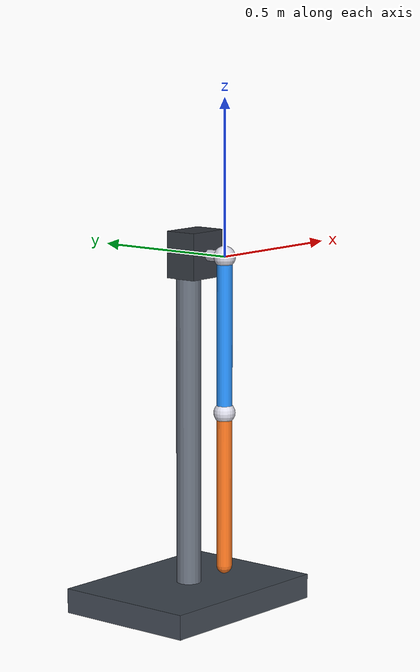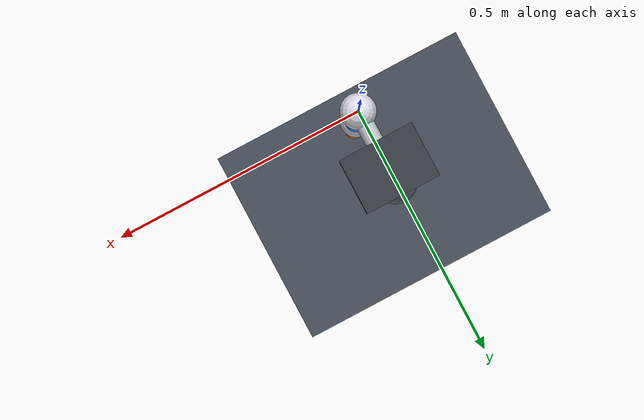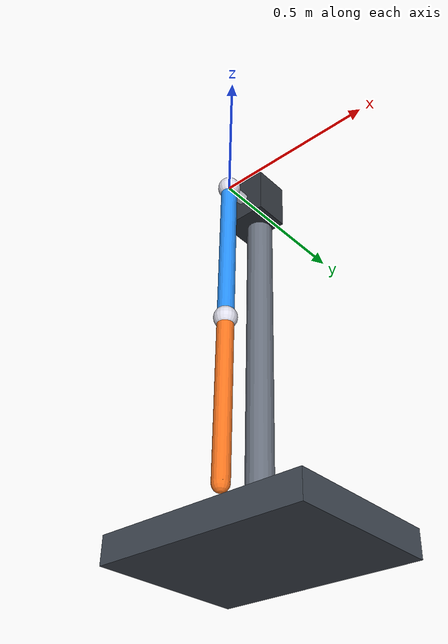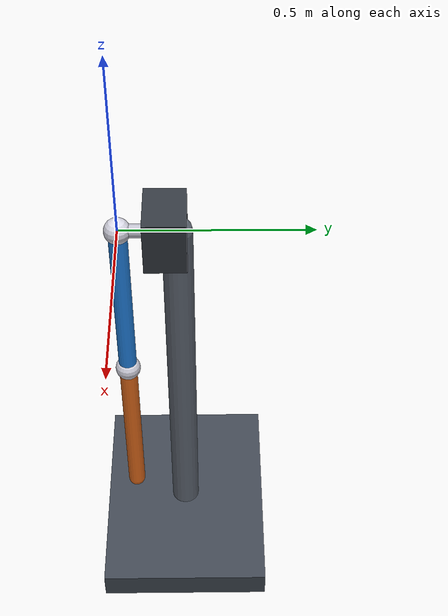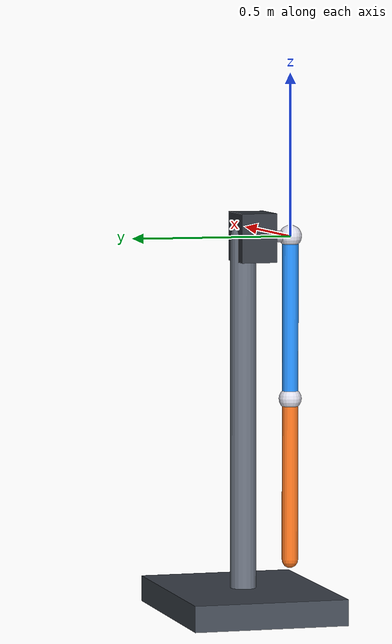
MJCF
<mujoco model="double_pendulum_base_motor">
  <!-- q1=0: link1 down. q2=0: links collinear. Target: q1=pi, q2=0. -->
  <compiler angle="radian"/>
  <option timestep="0.002" gravity="0 0 -9.81" integrator="implicitfast"/>
  <statistic center="0 0 -0.35" extent="1.6"/>

  <visual>
    <global offwidth="1280" offheight="720"/>
    <rgba haze="0.15 0.15 0.18 1"/>
  </visual>

  <default>
    <geom type="capsule" size="0.025" contype="0" conaffinity="0"/>
  </default>

  <worldbody>
    <light name="key" pos="1 -1 2" directional="true"/>
    <camera name="overview" pos="1.7 -2.0 0.8" xyaxes="0.76 0.65 0 -0.24 0.28 0.93"/>

    <!-- Fixed stand is decorative and has no contacts. -->
    <body name="stand" pos="0 0.15 0">
      <geom name="foot" type="box" size="0.32 0.24 0.04" pos="0 0 -1.12" rgba="0.25 0.28 0.32 1"/>
      <geom name="post" fromto="0 0 -1.08 0 0 0" size="0.04" rgba="0.4 0.43 0.48 1"/>
      <geom name="motor_housing" type="box" size="0.075 0.055 0.075" pos="0 -0.03 0" rgba="0.2 0.22 0.25 1"/>
      <geom name="shaft" fromto="0 -0.04 0 0 -0.15 0" size="0.018" rgba="0.75 0.75 0.8 1"/>
    </body>
    <body name="link1">
      <joint name="base_joint" type="hinge" axis="0 1 0" limited="false" damping="0.025" armature="0.002"/>
      <site name="base_pivot" type="sphere" size="0.035" rgba="0.85 0.85 0.9 1"/>
      <geom name="link1_geom" fromto="0 0 0 0 0 -0.5" mass="0.5" rgba="0.15 0.55 0.95 1"/>

      <body name="link2" pos="0 0 -0.5">
        <!-- Passive elbow: no actuator is attached to elbow_joint. -->
        <joint name="elbow_joint" type="hinge" axis="0 1 0" limited="false" damping="0.015"/>
        <site name="passive_pivot" type="sphere" size="0.035" rgba="0.85 0.85 0.9 1"/>
        <geom name="link2_geom" fromto="0 0 0 0 0 -0.5" mass="0.5" rgba="0.95 0.45 0.12 1"/>
        <site name="tip" pos="0 0 -0.5" size="0.015" rgba="0.1 1 0.25 1"/>
      </body>
    </body>
  </worldbody>

  <actuator>
    <motor name="base_motor" joint="base_joint" gear="1" ctrllimited="true" ctrlrange="-6 6" forcelimited="true" forcerange="-6 6"/>
  </actuator>
  <keyframe>
    <key name="hanging" qpos="0 0" ctrl="0"/>
    <key name="swing_demo" qpos="0.6 -0.4" ctrl="0"/>
    <key name="upright" qpos="3.141592653589793 0" ctrl="0"/>
  </keyframe>
</mujoco>
